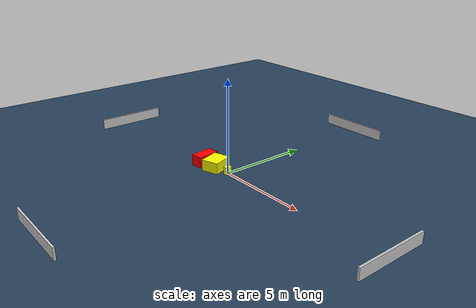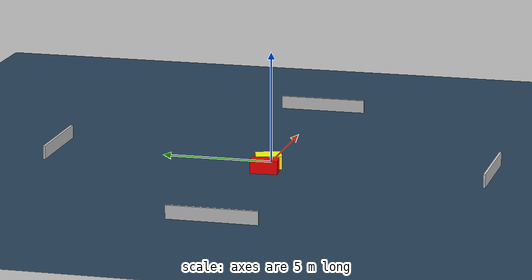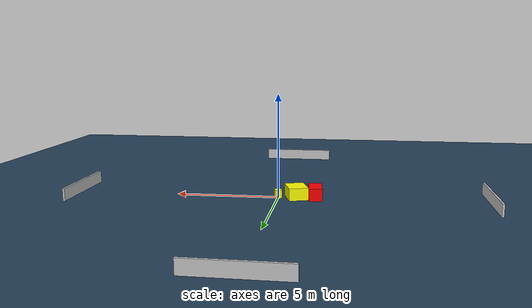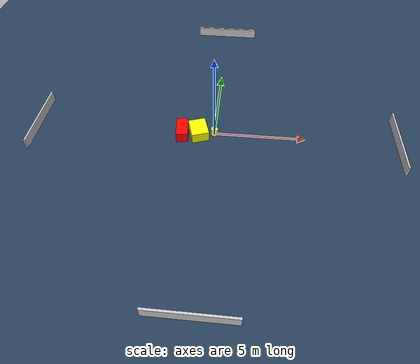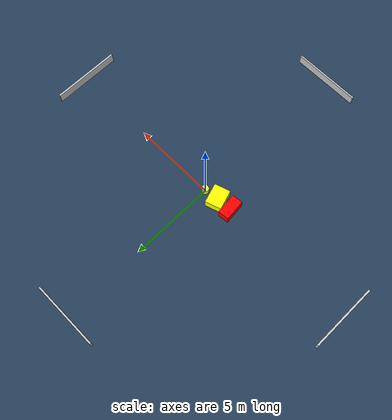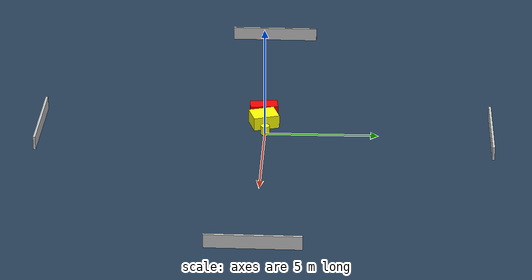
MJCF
<?xml version="1.0" ?>
<mujoco model="generated_environment">
  <option timestep="0.01" integrator="RK4" cone="elliptic"/>
  <default>
    <geom density="1"/>
  </default>
  <asset>
    <texture builtin="gradient" height="3072" name="skybox" rgb1="0.3 0.5 0.7" rgb2="0 0 0" type="skybox" width="512"/>
    <texture builtin="checker" height="300" name="groundplane" rgb1="0.2 0.3 0.4" rgb2="0.1 0.2 0.3" type="2d" width="300"/>
    <material name="groundplane" reflectance="0.2" texrepeat="5 5" texture="groundplane"/>
  </asset>
  <worldbody>
    <light dir="0 0 -1" directional="true" pos="0 0 1.5"/>
    <geom condim="3" friction="0.5 0.005 0.001" material="groundplane" name="floor" pos="0 0 0" size="0 0 0.05" type="plane"/>
    <body name="walls">
      <geom name="wall_1" condim="4" pos="-10.0 0.0 0.3" rgba="0.800000011920929 0.800000011920929 0.800000011920929 1.0" size="0.05 2.0 0.3" type="box"/>
      <geom name="wall_2" condim="4" pos="10.0 0.0 0.3" rgba="0.800000011920929 0.800000011920929 0.800000011920929 1.0" size="0.05 2.0 0.3" type="box"/>
      <geom name="wall_3" condim="4" pos="0.0 -10.0 0.3" rgba="0.800000011920929 0.800000011920929 0.800000011920929 1.0" size="2.0 0.05 0.3" type="box"/>
      <geom name="wall_4" condim="4" pos="0.0 10.0 0.3" rgba="0.800000011920929 0.800000011920929 0.800000011920929 1.0" size="2.0 0.05 0.3" type="box"/>
    </body>
    <body name="robot">
      <joint name="joint_x" type="slide" pos="0 0 0" axis="1 0 0"/>
      <joint name="joint_y" type="slide" pos="0 0 0" axis="0 1 0"/>
      <geom name="robot" type="cylinder" pos="0.0 0.0 0.2" size="0.2 0.2 0.0" mass="5.0" friction="1.0 0.005 0.0001" condim="4" rgba="1.0 1.0 0.0 1.0"/>
    </body>
    <body name="obstacle_1_movable">
      <geom name="obstacle_1_movable" condim="4" pos="-0.8723178493896666 -0.09376766010577284 0.3" euler="0 0 198.04788060819146" friction="0.0 0.005 0.001" rgba="1.0 1.0 0.0 1.0" size="0.4728137730036201 0.5834074083287324 0.3" type="box" mass="0.1"/>
      <joint type="free"/>
    </body>
    <body name="obstacle_2_static">
      <geom name="obstacle_2_static" condim="4" pos="-1.7811473134079008 -0.14103625956719767 0.3" euler="0 0 95.92331704252044" friction="0.0 0.005 0.001" rgba="1.0 0.0 0.0 1.0" size="0.6170056846353122 0.32305615832177687 0.3" type="box"/>
    </body>
  </worldbody>
  <actuator>
    <motor name="actuator_x" joint="joint_x" gear="1" ctrlrange="-1 1"/>
    <motor name="actuator_y" joint="joint_y" gear="1" ctrlrange="-1 1"/>
  </actuator>
</mujoco>
